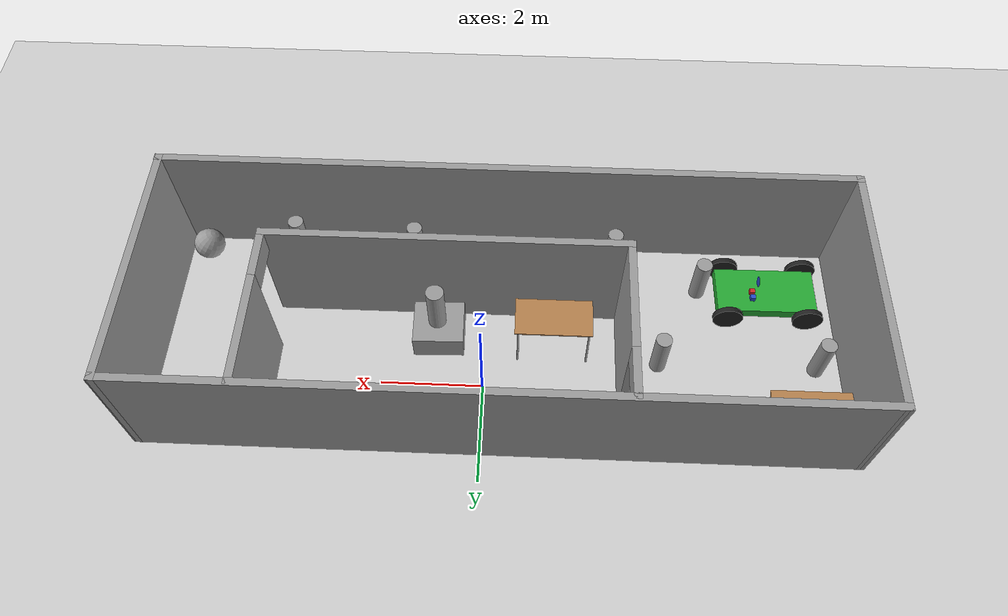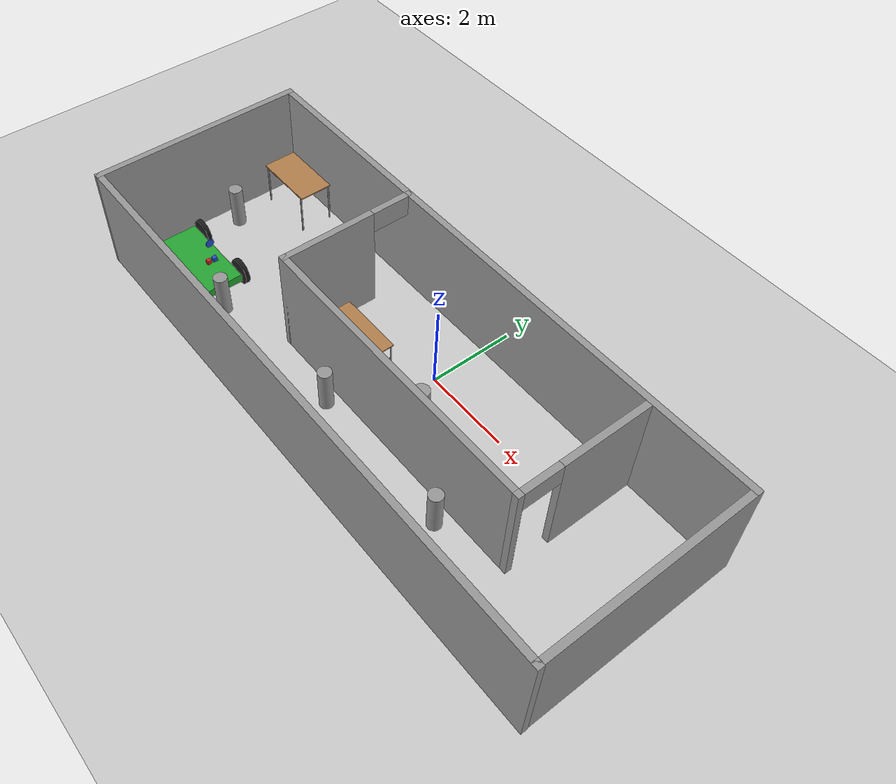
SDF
<sdf version="1.7">
 <world name="default">
  <plugin name="gazebo_ros_state" filename="libgazebo_ros_state.so">
   <ros><namespace>/gazebo</namespace></ros>
  </plugin>
  <physics type="ode">
   <max_step_size>0.001</max_step_size>
   <real_time_factor>1</real_time_factor>
   <real_time_update_rate>1000</real_time_update_rate>
   <ode>
    <solver>
     <type>quick</type>
     <iters>150</iters>
     <sor>1.3</sor>
     <use_dynamic_moi_rescaling>0</use_dynamic_moi_rescaling>
    </solver>
    <constraints>
     <cfm>1e-06</cfm>
     <erp>0.8</erp>
     <contact_max_correcting_vel>0.1</contact_max_correcting_vel>
     <contact_surface_layer>0.005</contact_surface_layer>
    </constraints>
   </ode>
   <gravity>0 0 0</gravity>
  </physics>
  <scene>
   <sky><clouds><speed>12</speed></clouds></sky>
   <ambient>0.4 0.4 0.4 1</ambient>
   <background>0.7 0.7 0.7 1</background>
   <shadows>1</shadows>
  </scene>
  <light name="sun" type="directional">
   <pose>0 0 10 0 -0 0</pose>
   <diffuse>0.8 0.8 0.8 1</diffuse>
   <specular>0.2 0.2 0.2 1</specular>
   <attenuation>
    <range>1000</range>
    <constant>0.9</constant>
    <linear>0.01</linear>
    <quadratic>0.001</quadratic>
   </attenuation>
   <direction>-0.5 0.1 -0.9</direction>
   <spot><inner_angle>0</inner_angle><outer_angle>0</outer_angle><falloff>0</falloff></spot>
  </light>
  <model name="ground_plane">
   <static>1</static>
   <link name="link">
    <collision name="collision">
     <geometry><plane><normal>0 0 1</normal><size>100 100</size></plane></geometry>
     <surface>
      <contact><collide_bitmask>65535</collide_bitmask></contact>
      <friction><ode><mu>100</mu><mu2>50</mu2></ode></friction>
     </surface>
    </collision>
    <visual name="visual">
     <cast_shadows>0</cast_shadows>
     <geometry><plane><normal>0 0 1</normal><size>100 100</size></plane></geometry>
     <material>
      <script><uri>file://media/materials/scripts/gazebo.material</uri><name>Gazebo/Grey</name></script>
     </material>
    </visual>
   </link>
  </model>
  <gravity>0 0 -9.81</gravity>
  <magnetic_field>6e-06 2.3e-05 -4.2e-05</magnetic_field>
  <atmosphere type="adiabatic"/>
  <audio><device>default</device></audio>
  <spherical_coordinates>
   <surface_model>EARTH_WGS84</surface_model>
   <latitude_deg>0</latitude_deg>
   <longitude_deg>0</longitude_deg>
   <elevation>0</elevation>
   <heading_deg>0</heading_deg>
  </spherical_coordinates>
  <model name="world1.world">
   <pose>-0.325077 -1.045 0 0 -0 0</pose>
   <link name="Wall_12">
    <collision name="Wall_12_Collision">
     <geometry><box><size>13.75 0.15 2.5</size></box></geometry>
     <pose>0 0 1.25 0 -0 0</pose>
    </collision>
    <visual name="Wall_12_Visual">
     <pose>0 0 1.25 0 -0 0</pose>
     <geometry><box><size>13.75 0.15 2.5</size></box></geometry>
     <material>
      <script><uri>file://media/materials/scripts/gazebo.material</uri><name>Gazebo/Grey</name></script>
      <ambient>1 1 1 1</ambient>
     </material>
     <meta><layer>0</layer></meta>
    </visual>
    <pose>-0.004923 2.425 0 0 -0 0</pose>
   </link>
   <link name="Wall_13">
    <collision name="Wall_13_Collision">
     <geometry><box><size>5 0.15 2.5</size></box></geometry>
     <pose>0 0 1.25 0 -0 0</pose>
    </collision>
    <visual name="Wall_13_Visual">
     <pose>0 0 1.25 0 -0 0</pose>
     <geometry><box><size>5 0.15 2.5</size></box></geometry>
     <material>
      <script><uri>file://media/materials/scripts/gazebo.material</uri><name>Gazebo/Grey</name></script>
      <ambient>1 1 1 1</ambient>
     </material>
     <meta><layer>0</layer></meta>
    </visual>
    <pose>6.79508 -0 0 0 -0 -1.5708</pose>
   </link>
   <link name="Wall_14">
    <collision name="Wall_14_Collision">
     <geometry><box><size>0.16 0.15 2.5</size></box></geometry>
     <pose>0 0 1.25 0 -0 0</pose>
    </collision>
    <visual name="Wall_14_Visual">
     <pose>0 0 1.25 0 -0 0</pose>
     <geometry><box><size>0.16 0.15 2.5</size></box></geometry>
     <material>
      <script><uri>file://media/materials/scripts/gazebo.material</uri><name>Gazebo/Grey</name></script>
      <ambient>1 1 1 1</ambient>
     </material>
     <meta><layer>0</layer></meta>
    </visual>
    <pose>6.80008 -2.425 0 0 -0 0</pose>
   </link>
   <link name="Wall_15">
    <collision name="Wall_15_Collision">
     <geometry><box><size>13.75 0.15 2.5</size></box></geometry>
     <pose>0 0 1.25 0 -0 0</pose>
    </collision>
    <visual name="Wall_15_Visual">
     <pose>0 0 1.25 0 -0 0</pose>
     <geometry><box><size>13.75 0.15 2.5</size></box></geometry>
     <material>
      <script><uri>file://media/materials/scripts/gazebo.material</uri><name>Gazebo/Grey</name></script>
      <ambient>1 1 1 1</ambient>
     </material>
     <meta><layer>0</layer></meta>
    </visual>
    <pose>0.005077 -2.425 0 0 -0 3.14159</pose>
   </link>
   <link name="Wall_16">
    <collision name="Wall_16_Collision">
     <geometry><box><size>5.00001 0.15 2.5</size></box></geometry>
     <pose>0 0 1.25 0 -0 0</pose>
    </collision>
    <visual name="Wall_16_Visual">
     <pose>0 0 1.25 0 -0 0</pose>
     <geometry><box><size>5.00001 0.15 2.5</size></box></geometry>
     <material>
      <script><uri>file://media/materials/scripts/gazebo.material</uri><name>Gazebo/Grey</name></script>
      <ambient>1 1 1 1</ambient>
     </material>
     <meta><layer>0</layer></meta>
    </visual>
    <pose>-6.79992 -0 0 0 -0 1.57286</pose>
   </link>
   <link name="Wall_18">
    <pose>-2.36492 0.845 0 0 -0 -1.5708</pose>
    <visual name="Wall_18_Visual_0">
     <pose>-1.5725 0 1.25 0 -0 0</pose>
     <geometry><box><size>0.105 0.15 2.5</size></box></geometry>
     <material>
      <script><uri>file://media/materials/scripts/gazebo.material</uri><name>Gazebo/Grey</name></script>
      <ambient>1 1 1 1</ambient>
     </material>
     <meta><layer>0</layer></meta>
    </visual>
    <collision name="Wall_18_Collision_0">
     <geometry><box><size>0.105 0.15 2.5</size></box></geometry>
     <pose>-1.5725 0 1.25 0 -0 0</pose>
    </collision>
    <visual name="Wall_18_Visual_1">
     <pose>0.5025 0 1.25 0 -0 0</pose>
     <geometry><box><size>2.245 0.15 2.5</size></box></geometry>
     <material>
      <script><uri>file://media/materials/scripts/gazebo.material</uri><name>Gazebo/Grey</name></script>
      <ambient>1 1 1 1</ambient>
     </material>
     <meta><layer>0</layer></meta>
    </visual>
    <collision name="Wall_18_Collision_1">
     <geometry><box><size>2.245 0.15 2.5</size></box></geometry>
     <pose>0.5025 0 1.25 0 -0 0</pose>
    </collision>
    <visual name="Wall_18_Visual_2">
     <pose>-1.07 0 2.25 0 -0 0</pose>
     <geometry><box><size>0.9 0.15 0.5</size></box></geometry>
     <material>
      <script><uri>file://media/materials/scripts/gazebo.material</uri><name>Gazebo/Grey</name></script>
      <ambient>1 1 1 1</ambient>
     </material>
     <meta><layer>0</layer></meta>
    </visual>
    <collision name="Wall_18_Collision_2">
     <geometry><box><size>0.9 0.15 0.5</size></box></geometry>
     <pose>-1.07 0 2.25 0 -0 0</pose>
    </collision>
   </link>
   <link name="Wall_19">
    <collision name="Wall_19_Collision">
     <geometry><box><size>7 0.15 2.5</size></box></geometry>
     <pose>0 0 1.25 0 -0 0</pose>
    </collision>
    <visual name="Wall_19_Visual">
     <pose>0 0 1.25 0 -0 0</pose>
     <geometry><box><size>7 0.15 2.5</size></box></geometry>
     <material>
      <script><uri>file://media/materials/scripts/gazebo.material</uri><name>Gazebo/Grey</name></script>
      <ambient>1 1 1 1</ambient>
     </material>
     <meta><layer>0</layer></meta>
    </visual>
    <pose>1.06008 -0.705 0 0 -0 0</pose>
   </link>
   <link name="Wall_20">
    <pose>4.48508 0.845 0 0 -0 1.5708</pose>
    <visual name="Wall_20_Visual_0">
     <pose>-1.5525 0 1.25 0 -0 0</pose>
     <geometry><box><size>0.145 0.15 2.5</size></box></geometry>
     <material>
      <script><uri>file://media/materials/scripts/gazebo.material</uri><name>Gazebo/Grey</name></script>
      <ambient>1 1 1 1</ambient>
     </material>
     <meta><layer>0</layer></meta>
    </visual>
    <collision name="Wall_20_Collision_0">
     <geometry><box><size>0.145 0.15 2.5</size></box></geometry>
     <pose>-1.5525 0 1.25 0 -0 0</pose>
    </collision>
    <visual name="Wall_20_Visual_1">
     <pose>0.5225 0 1.25 0 -0 0</pose>
     <geometry><box><size>2.205 0.15 2.5</size></box></geometry>
     <material>
      <script><uri>file://media/materials/scripts/gazebo.material</uri><name>Gazebo/Grey</name></script>
      <ambient>1 1 1 1</ambient>
     </material>
     <meta><layer>0</layer></meta>
    </visual>
    <collision name="Wall_20_Collision_1">
     <geometry><box><size>2.205 0.15 2.5</size></box></geometry>
     <pose>0.5225 0 1.25 0 -0 0</pose>
    </collision>
    <visual name="Wall_20_Visual_2">
     <pose>-1.03 0 2.25 0 -0 0</pose>
     <geometry><box><size>0.9 0.15 0.5</size></box></geometry>
     <material>
      <script><uri>file://media/materials/scripts/gazebo.material</uri><name>Gazebo/Grey</name></script>
      <ambient>1 1 1 1</ambient>
     </material>
     <meta><layer>0</layer></meta>
    </visual>
    <collision name="Wall_20_Collision_2">
     <geometry><box><size>0.9 0.15 0.5</size></box></geometry>
     <pose>-1.03 0 2.25 0 -0 0</pose>
    </collision>
   </link>
   <static>1</static>
  </model>
  <model name="table">
   <static>1</static>
   <link name="link">
    <collision name="surface">
     <pose>0 0 1 0 -0 0</pose>
     <geometry><box><size>1.5 0.8 0.03</size></box></geometry>
     <surface><friction><ode><mu>0.6</mu><mu2>0.6</mu2></ode></friction></surface>
    </collision>
    <visual name="visual1">
     <pose>0 0 1 0 -0 0</pose>
     <geometry><box><size>1.5 0.8 0.03</size></box></geometry>
     <material>
      <script><uri>file://media/materials/scripts/gazebo.material</uri><name>Gazebo/Wood</name></script>
     </material>
    </visual>
    <collision name="front_left_leg">
     <pose>0.68 0.38 0.5 0 -0 0</pose>
     <geometry><cylinder><radius>0.02</radius><length>1</length></cylinder></geometry>
    </collision>
    <visual name="front_left_leg">
     <pose>0.68 0.38 0.5 0 -0 0</pose>
     <geometry><cylinder><radius>0.02</radius><length>1</length></cylinder></geometry>
     <material>
      <script><uri>file://media/materials/scripts/gazebo.material</uri><name>Gazebo/Grey</name></script>
     </material>
    </visual>
    <collision name="front_right_leg">
     <pose>0.68 -0.38 0.5 0 -0 0</pose>
     <geometry><cylinder><radius>0.02</radius><length>1</length></cylinder></geometry>
    </collision>
    <visual name="front_right_leg">
     <pose>0.68 -0.38 0.5 0 -0 0</pose>
     <geometry><cylinder><radius>0.02</radius><length>1</length></cylinder></geometry>
     <material>
      <script><uri>file://media/materials/scripts/gazebo.material</uri><name>Gazebo/Grey</name></script>
     </material>
    </visual>
    <collision name="back_right_leg">
     <pose>-0.68 -0.38 0.5 0 -0 0</pose>
     <geometry><cylinder><radius>0.02</radius><length>1</length></cylinder></geometry>
    </collision>
    <visual name="back_right_leg">
     <pose>-0.68 -0.38 0.5 0 -0 0</pose>
     <geometry><cylinder><radius>0.02</radius><length>1</length></cylinder></geometry>
     <material>
      <script><uri>file://media/materials/scripts/gazebo.material</uri><name>Gazebo/Grey</name></script>
     </material>
    </visual>
    <collision name="back_left_leg">
     <pose>-0.68 0.38 0.5 0 -0 0</pose>
     <geometry><cylinder><radius>0.02</radius><length>1</length></cylinder></geometry>
    </collision>
    <visual name="back_left_leg">
     <pose>-0.68 0.38 0.5 0 -0 0</pose>
     <geometry><cylinder><radius>0.02</radius><length>1</length></cylinder></geometry>
     <material>
      <script><uri>file://media/materials/scripts/gazebo.material</uri><name>Gazebo/Grey</name></script>
     </material>
    </visual>
   </link>
   <pose>-1.34051 -1.02622 0 0 -0 0</pose>
  </model>
  <model name="table_0">
   <static>1</static>
   <link name="link">
    <collision name="surface">
     <pose>0 0 1 0 -0 0</pose>
     <geometry><box><size>1.5 0.8 0.03</size></box></geometry>
     <surface><friction><ode><mu>0.6</mu><mu2>0.6</mu2></ode></friction></surface>
    </collision>
    <visual name="visual1">
     <pose>0 0 1 0 -0 0</pose>
     <geometry><box><size>1.5 0.8 0.03</size></box></geometry>
     <material>
      <script><uri>file://media/materials/scripts/gazebo.material</uri><name>Gazebo/Wood</name></script>
     </material>
    </visual>
    <collision name="front_left_leg">
     <pose>0.68 0.38 0.5 0 -0 0</pose>
     <geometry><cylinder><radius>0.02</radius><length>1</length></cylinder></geometry>
    </collision>
    <visual name="front_left_leg">
     <pose>0.68 0.38 0.5 0 -0 0</pose>
     <geometry><cylinder><radius>0.02</radius><length>1</length></cylinder></geometry>
     <material>
      <script><uri>file://media/materials/scripts/gazebo.material</uri><name>Gazebo/Grey</name></script>
     </material>
    </visual>
    <collision name="front_right_leg">
     <pose>0.68 -0.38 0.5 0 -0 0</pose>
     <geometry><cylinder><radius>0.02</radius><length>1</length></cylinder></geometry>
    </collision>
    <visual name="front_right_leg">
     <pose>0.68 -0.38 0.5 0 -0 0</pose>
     <geometry><cylinder><radius>0.02</radius><length>1</length></cylinder></geometry>
     <material>
      <script><uri>file://media/materials/scripts/gazebo.material</uri><name>Gazebo/Grey</name></script>
     </material>
    </visual>
    <collision name="back_right_leg">
     <pose>-0.68 -0.38 0.5 0 -0 0</pose>
     <geometry><cylinder><radius>0.02</radius><length>1</length></cylinder></geometry>
    </collision>
    <visual name="back_right_leg">
     <pose>-0.68 -0.38 0.5 0 -0 0</pose>
     <geometry><cylinder><radius>0.02</radius><length>1</length></cylinder></geometry>
     <material>
      <script><uri>file://media/materials/scripts/gazebo.material</uri><name>Gazebo/Grey</name></script>
     </material>
    </visual>
    <collision name="back_left_leg">
     <pose>-0.68 0.38 0.5 0 -0 0</pose>
     <geometry><cylinder><radius>0.02</radius><length>1</length></cylinder></geometry>
    </collision>
    <visual name="back_left_leg">
     <pose>-0.68 0.38 0.5 0 -0 0</pose>
     <geometry><cylinder><radius>0.02</radius><length>1</length></cylinder></geometry>
     <material>
      <script><uri>file://media/materials/scripts/gazebo.material</uri><name>Gazebo/Grey</name></script>
     </material>
    </visual>
   </link>
   <pose>-6.08584 0.782727 0 0 -0 0</pose>
  </model>
  <model name="car">
   <link name="chassis">
    <pose>0 0 0.3 0 -0 0</pose>
    <collision name="collision"><geometry><box><size>2 1 0.2</size></box></geometry></collision>
    <visual name="visual">
     <geometry><box><size>2 1 0.2</size></box></geometry>
     <material>
      <script><uri>file://media/materials/scripts/gazebo.material</uri><name>Gazebo/Green</name></script>
     </material>
    </visual>
    <inertial>
     <inertia><ixx>1</ixx><ixy>0</ixy><ixz>0</ixz><iyy>1</iyy><iyz>0</iyz><izz>1</izz></inertia>
     <mass>1</mass>
    </inertial>
   </link>
   <link name="front_left_wheel">
    <pose>0.8 0.6 0.3 -0 1.5707 1.5707</pose>
    <collision name="collision">
     <geometry><cylinder><radius>0.3</radius><length>0.1</length></cylinder></geometry>
    </collision>
    <visual name="visual">
     <geometry><cylinder><radius>0.3</radius><length>0.1</length></cylinder></geometry>
     <material>
      <script><uri>file://media/materials/scripts/gazebo.material</uri><name>Gazebo/Black</name></script>
     </material>
    </visual>
    <inertial>
     <inertia><ixx>1</ixx><ixy>0</ixy><ixz>0</ixz><iyy>1</iyy><iyz>0</iyz><izz>1</izz></inertia>
     <mass>1</mass>
    </inertial>
   </link>
   <link name="front_right_wheel">
    <pose>0.8 -0.6 0.3 -0 1.5707 1.5707</pose>
    <collision name="collision">
     <geometry><cylinder><radius>0.3</radius><length>0.1</length></cylinder></geometry>
    </collision>
    <visual name="visual">
     <geometry><cylinder><radius>0.3</radius><length>0.1</length></cylinder></geometry>
     <material>
      <script><uri>file://media/materials/scripts/gazebo.material</uri><name>Gazebo/Black</name></script>
     </material>
    </visual>
    <inertial>
     <inertia><ixx>1</ixx><ixy>0</ixy><ixz>0</ixz><iyy>1</iyy><iyz>0</iyz><izz>1</izz></inertia>
     <mass>1</mass>
    </inertial>
   </link>
   <link name="back_right_wheel">
    <pose>-0.8 -0.6 0.3 -0 1.5707 1.5707</pose>
    <collision name="collision">
     <geometry><cylinder><radius>0.3</radius><length>0.1</length></cylinder></geometry>
    </collision>
    <visual name="visual">
     <geometry><cylinder><radius>0.3</radius><length>0.1</length></cylinder></geometry>
     <material>
      <script><uri>file://media/materials/scripts/gazebo.material</uri><name>Gazebo/Black</name></script>
     </material>
    </visual>
    <inertial>
     <inertia><ixx>1</ixx><ixy>0</ixy><ixz>0</ixz><iyy>1</iyy><iyz>0</iyz><izz>1</izz></inertia>
     <mass>1</mass>
    </inertial>
   </link>
   <link name="back_left_wheel">
    <pose>-0.8 0.6 0.3 -0 1.5707 1.5707</pose>
    <collision name="collision">
     <geometry><cylinder><radius>0.3</radius><length>0.1</length></cylinder></geometry>
    </collision>
    <visual name="visual">
     <geometry><cylinder><radius>0.3</radius><length>0.1</length></cylinder></geometry>
     <material>
      <script><uri>file://media/materials/scripts/gazebo.material</uri><name>Gazebo/Black</name></script>
     </material>
    </visual>
    <inertial>
     <inertia><ixx>1</ixx><ixy>0</ixy><ixz>0</ixz><iyy>1</iyy><iyz>0</iyz><izz>1</izz></inertia>
     <mass>1</mass>
    </inertial>
   </link>
   <link name="gas_pedal">
    <pose>0.3 0.1 0.5 0 -0 0</pose>
    <collision name="collision"><geometry><box><size>0.1 0.1 0.1</size></box></geometry></collision>
    <visual name="visual">
     <geometry><box><size>0.1 0.1 0.1</size></box></geometry>
     <material>
      <script><uri>file://media/materials/scripts/gazebo.material</uri><name>Gazebo/Red</name></script>
     </material>
    </visual>
    <inertial>
     <inertia><ixx>1</ixx><ixy>0</ixy><ixz>0</ixz><iyy>1</iyy><iyz>0</iyz><izz>1</izz></inertia>
     <mass>1</mass>
    </inertial>
   </link>
   <link name="brake_pedal">
    <pose>0.3 0.25 0.5 0 -0 0</pose>
    <collision name="collision"><geometry><box><size>0.1 0.1 0.1</size></box></geometry></collision>
    <visual name="visual">
     <geometry><box><size>0.1 0.1 0.1</size></box></geometry>
     <material>
      <script><uri>file://media/materials/scripts/gazebo.material</uri><name>Gazebo/Blue</name></script>
     </material>
    </visual>
    <inertial>
     <inertia><ixx>1</ixx><ixy>0</ixy><ixz>0</ixz><iyy>1</iyy><iyz>0</iyz><izz>1</izz></inertia>
     <mass>1</mass>
    </inertial>
   </link>
   <link name="steering_wheel">
    <pose>0.3 0.2 1 0 1.5707 0</pose>
    <collision name="collision">
     <geometry><cylinder><radius>0.1</radius><length>0.01</length></cylinder></geometry>
    </collision>
    <visual name="visual">
     <geometry><cylinder><radius>0.1</radius><length>0.01</length></cylinder></geometry>
     <material>
      <script><uri>file://media/materials/scripts/gazebo.material</uri><name>Gazebo/Blue</name></script>
     </material>
    </visual>
    <inertial>
     <inertia><ixx>1</ixx><ixy>0</ixy><ixz>0</ixz><iyy>1</iyy><iyz>0</iyz><izz>1</izz></inertia>
     <mass>1</mass>
    </inertial>
   </link>
   <joint name="gas_joint" type="prismatic">
    <parent>chassis</parent>
    <child>gas_pedal</child>
    <axis>
     <xyz expressed_in="__model__">1 0 0</xyz>
     <limit><lower>0</lower><upper>0.2</upper></limit>
     <dynamics><spring_reference>0</spring_reference><spring_stiffness>0</spring_stiffness></dynamics>
    </axis>
   </joint>
   <joint name="brake_joint" type="prismatic">
    <parent>chassis</parent>
    <child>brake_pedal</child>
    <axis>
     <xyz expressed_in="__model__">1 0 0</xyz>
     <limit><lower>0</lower><upper>0.2</upper></limit>
     <dynamics><spring_reference>0</spring_reference><spring_stiffness>0</spring_stiffness></dynamics>
    </axis>
   </joint>
   <joint name="steering_joint" type="revolute">
    <parent>chassis</parent>
    <child>steering_wheel</child>
    <axis>
     <xyz expressed_in="__model__">1 0 0</xyz>
     <limit><lower>-7.853</lower><upper>7.853</upper></limit>
     <dynamics><spring_reference>0</spring_reference><spring_stiffness>0</spring_stiffness></dynamics>
    </axis>
   </joint>
   <joint name="front_left_joint" type="revolute2">
    <parent>chassis</parent>
    <child>front_left_wheel</child>
    <axis>
     <xyz expressed_in="__model__">0 0 1</xyz>
     <limit><lower>1.24559e-07</lower><upper>1.24559e-07</upper></limit>
     <dynamics><spring_reference>0</spring_reference><spring_stiffness>0</spring_stiffness></dynamics>
    </axis>
    <axis2>
     <xyz expressed_in="__model__">0 1 0</xyz>
     <limit><upper>1e+16</upper><lower>-1e+16</lower></limit>
     <dynamics><spring_reference>0</spring_reference><spring_stiffness>0</spring_stiffness></dynamics>
    </axis2>
    <physics><ode><limit><cfm>0</cfm><erp>0.9</erp></limit></ode></physics>
   </joint>
   <joint name="front_right_joint" type="revolute2">
    <parent>chassis</parent>
    <child>front_right_wheel</child>
    <axis>
     <xyz expressed_in="__model__">0 0 1</xyz>
     <limit><lower>1.24559e-07</lower><upper>1.24559e-07</upper></limit>
     <dynamics><spring_reference>0</spring_reference><spring_stiffness>0</spring_stiffness></dynamics>
    </axis>
    <axis2>
     <xyz expressed_in="__model__">0 1 0</xyz>
     <limit><upper>1e+16</upper><lower>-1e+16</lower></limit>
     <dynamics><spring_reference>0</spring_reference><spring_stiffness>0</spring_stiffness></dynamics>
    </axis2>
    <physics><ode><limit><cfm>0</cfm><erp>0.9</erp></limit></ode></physics>
   </joint>
   <joint name="back_right_joint" type="revolute2">
    <parent>chassis</parent>
    <child>back_right_wheel</child>
    <axis>
     <xyz expressed_in="__model__">0 0 1</xyz>
     <limit><lower>0</lower><upper>0</upper></limit>
     <dynamics><spring_reference>0</spring_reference><spring_stiffness>0</spring_stiffness></dynamics>
    </axis>
    <axis2>
     <xyz expressed_in="__model__">0 1 0</xyz>
     <limit><upper>1e+16</upper><lower>-1e+16</lower></limit>
     <dynamics><spring_reference>0</spring_reference><spring_stiffness>0</spring_stiffness></dynamics>
    </axis2>
    <physics><ode><limit><cfm>0</cfm><erp>0.9</erp></limit></ode></physics>
   </joint>
   <joint name="back_left_joint" type="revolute2">
    <parent>chassis</parent>
    <child>back_left_wheel</child>
    <axis>
     <xyz expressed_in="__model__">0 0 1</xyz>
     <limit><lower>0</lower><upper>0</upper></limit>
     <dynamics><spring_reference>0</spring_reference><spring_stiffness>0</spring_stiffness></dynamics>
    </axis>
    <axis2>
     <xyz expressed_in="__model__">0 1 0</xyz>
     <limit><upper>1e+16</upper><lower>-1e+16</lower></limit>
     <dynamics><spring_reference>0</spring_reference><spring_stiffness>0</spring_stiffness></dynamics>
    </axis2>
    <physics><ode><limit><cfm>0</cfm><erp>0.9</erp></limit></ode></physics>
   </joint>
   <plugin name="vehicle" filename="libVehiclePlugin.so">
    <front_left>front_left_joint</front_left>
    <front_right>front_right_joint</front_right>
    <back_left>back_left_joint</back_left>
    <back_right>back_right_joint</back_right>
    <gas>gas_joint</gas>
    <brake>brake_joint</brake>
    <steering>steering_joint</steering>
    <front_power>10</front_power>
    <rear_power>10</rear_power>
    <tire_angle_range>0.5</tire_angle_range>
    <max_speed>10</max_speed>
    <aero_load>0.1</aero_load>
   </plugin>
   <pose>-5.6712 -2.22943 1.5e-05 -4e-06 2e-06 0.006415</pose>
  </model>
  <model name="unit_box">
   <pose>0.92926 -1.14538 0.249654 -1.56909 0.001785 0.025146</pose>
   <link name="link">
    <inertial>
     <mass>1</mass>
     <inertia>
      <ixx>0.166667</ixx>
      <ixy>0</ixy>
      <ixz>0</ixz>
      <iyy>0.166667</iyy>
      <iyz>0</iyz>
      <izz>0.166667</izz>
     </inertia>
    </inertial>
    <collision name="collision"><geometry><box><size>1 0.536145 0.922971</size></box></geometry></collision>
    <visual name="visual">
     <geometry><box><size>1 0.536145 0.922971</size></box></geometry>
     <material>
      <script><name>Gazebo/Grey</name><uri>file://media/materials/scripts/gazebo.material</uri></script>
     </material>
    </visual>
   </link>
  </model>
  <model name="unit_cylinder">
   <pose>0.953621 -1.16726 1.01765 0.001799 0.001931 0.012074</pose>
   <link name="link">
    <inertial>
     <mass>1</mass>
     <inertia><ixx>0.145833</ixx><ixy>0</ixy><ixz>0</ixz><iyy>0.145833</iyy><iyz>0</iyz><izz>0.125</izz></inertia>
    </inertial>
    <collision name="collision">
     <geometry><cylinder><radius>0.176553</radius><length>1</length></cylinder></geometry>
    </collision>
    <visual name="visual">
     <geometry><cylinder><radius>0.176553</radius><length>1</length></cylinder></geometry>
     <material>
      <script><name>Gazebo/Grey</name><uri>file://media/materials/scripts/gazebo.material</uri></script>
     </material>
    </visual>
   </link>
  </model>
  <model name="unit_cylinder_0">
   <pose>4.02247 -3.14507 0.499993 0 -0 -0.000214</pose>
   <link name="link">
    <inertial>
     <mass>1</mass>
     <inertia><ixx>0.145833</ixx><ixy>0</ixy><ixz>0</ixz><iyy>0.145833</iyy><iyz>0</iyz><izz>0.125</izz></inertia>
    </inertial>
    <collision name="collision">
     <geometry><cylinder><radius>0.156489</radius><length>1</length></cylinder></geometry>
    </collision>
    <visual name="visual">
     <geometry><cylinder><radius>0.156489</radius><length>1</length></cylinder></geometry>
     <material>
      <script><name>Gazebo/Grey</name><uri>file://media/materials/scripts/gazebo.material</uri></script>
     </material>
    </visual>
   </link>
  </model>
  <model name="unit_cylinder_0_clone">
   <pose>2.65479 -2.17917 0.499999 1e-06 -1e-06 -0.000124</pose>
   <link name="link">
    <inertial>
     <mass>1</mass>
     <inertia><ixx>0.145833</ixx><ixy>0</ixy><ixz>0</ixz><iyy>0.145833</iyy><iyz>0</iyz><izz>0.125</izz></inertia>
    </inertial>
    <collision name="collision">
     <geometry><cylinder><radius>0.156489</radius><length>1</length></cylinder></geometry>
    </collision>
    <visual name="visual">
     <geometry><cylinder><radius>0.156489</radius><length>1</length></cylinder></geometry>
     <material>
      <script><name>Gazebo/Grey</name><uri>file://media/materials/scripts/gazebo.material</uri></script>
     </material>
    </visual>
   </link>
  </model>
  <model name="unit_cylinder_0_clone_clone">
   <pose>1.5579 -3.08066 0.499999 0 -0 -0.000124</pose>
   <link name="link">
    <inertial>
     <mass>1</mass>
     <inertia><ixx>0.145833</ixx><ixy>0</ixy><ixz>0</ixz><iyy>0.145833</iyy><iyz>0</iyz><izz>0.125</izz></inertia>
    </inertial>
    <collision name="collision">
     <geometry><cylinder><radius>0.156489</radius><length>1</length></cylinder></geometry>
    </collision>
    <visual name="visual">
     <geometry><cylinder><radius>0.156489</radius><length>1</length></cylinder></geometry>
     <material>
      <script><name>Gazebo/Grey</name><uri>file://media/materials/scripts/gazebo.material</uri></script>
     </material>
    </visual>
   </link>
  </model>
  <model name="unit_cylinder_0_clone_clone_0">
   <pose>-0.870478 -2.13106 0.499999 1e-06 -1e-06 -0.000124</pose>
   <link name="link">
    <inertial>
     <mass>1</mass>
     <inertia><ixx>0.145833</ixx><ixy>0</ixy><ixz>0</ixz><iyy>0.145833</iyy><iyz>0</iyz><izz>0.125</izz></inertia>
    </inertial>
    <collision name="collision">
     <geometry><cylinder><radius>0.156489</radius><length>1</length></cylinder></geometry>
    </collision>
    <visual name="visual">
     <geometry><cylinder><radius>0.156489</radius><length>1</length></cylinder></geometry>
     <material>
      <script><name>Gazebo/Grey</name><uri>file://media/materials/scripts/gazebo.material</uri></script>
     </material>
    </visual>
   </link>
  </model>
  <model name="unit_cylinder_0_clone_clone_1">
   <pose>-2.58628 -3.07057 0.499999 -0 -0 -0.000124</pose>
   <link name="link">
    <inertial>
     <mass>1</mass>
     <inertia><ixx>0.145833</ixx><ixy>0</ixy><ixz>0</ixz><iyy>0.145833</iyy><iyz>0</iyz><izz>0.125</izz></inertia>
    </inertial>
    <collision name="collision">
     <geometry><cylinder><radius>0.156489</radius><length>1</length></cylinder></geometry>
    </collision>
    <visual name="visual">
     <geometry><cylinder><radius>0.156489</radius><length>1</length></cylinder></geometry>
     <material>
      <script><name>Gazebo/Grey</name><uri>file://media/materials/scripts/gazebo.material</uri></script>
     </material>
    </visual>
   </link>
  </model>
  <model name="unit_cylinder_0_clone_clone_2">
   <pose>-4.34387 -2.39856 0.499999 1e-06 -1e-06 -0.000124</pose>
   <link name="link">
    <inertial>
     <mass>1</mass>
     <inertia><ixx>0.145833</ixx><ixy>0</ixy><ixz>0</ixz><iyy>0.145833</iyy><iyz>0</iyz><izz>0.125</izz></inertia>
    </inertial>
    <collision name="collision">
     <geometry><cylinder><radius>0.156489</radius><length>1</length></cylinder></geometry>
    </collision>
    <visual name="visual">
     <geometry><cylinder><radius>0.156489</radius><length>1</length></cylinder></geometry>
     <material>
      <script><name>Gazebo/Grey</name><uri>file://media/materials/scripts/gazebo.material</uri></script>
     </material>
    </visual>
   </link>
  </model>
  <model name="unit_cylinder_0_clone_clone_3">
   <pose>-6.56896 -0.625653 0.499991 -1e-06 1e-06 -0.000124</pose>
   <link name="link">
    <inertial>
     <mass>1</mass>
     <inertia><ixx>0.145833</ixx><ixy>0</ixy><ixz>0</ixz><iyy>0.145833</iyy><iyz>0</iyz><izz>0.125</izz></inertia>
    </inertial>
    <collision name="collision">
     <geometry><cylinder><radius>0.156489</radius><length>1</length></cylinder></geometry>
    </collision>
    <visual name="visual">
     <geometry><cylinder><radius>0.156489</radius><length>1</length></cylinder></geometry>
     <material>
      <script><name>Gazebo/Grey</name><uri>file://media/materials/scripts/gazebo.material</uri></script>
     </material>
    </visual>
   </link>
  </model>
  <model name="unit_cylinder_0_clone_clone_4">
   <pose>-3.44687 -0.61696 0.499999 0 -0 -0.000124</pose>
   <link name="link">
    <inertial>
     <mass>1</mass>
     <inertia><ixx>0.145833</ixx><ixy>0</ixy><ixz>0</ixz><iyy>0.145833</iyy><iyz>0</iyz><izz>0.125</izz></inertia>
    </inertial>
    <collision name="collision">
     <geometry><cylinder><radius>0.156489</radius><length>1</length></cylinder></geometry>
    </collision>
    <visual name="visual">
     <geometry><cylinder><radius>0.156489</radius><length>1</length></cylinder></geometry>
     <material>
      <script><name>Gazebo/Grey</name><uri>file://media/materials/scripts/gazebo.material</uri></script>
     </material>
    </visual>
   </link>
  </model>
  <model name="unit_sphere">
   <pose>5.96174 -3.01695 0.314241 -0.624493 -0.090109 1.83206</pose>
   <link name="link">
    <inertial>
     <mass>1</mass>
     <inertia><ixx>0.1</ixx><ixy>0</ixy><ixz>0</ixz><iyy>0.1</iyy><iyz>0</iyz><izz>0.1</izz></inertia>
    </inertial>
    <collision name="collision"><geometry><sphere><radius>0.314241</radius></sphere></geometry></collision>
    <visual name="visual">
     <geometry><sphere><radius>0.314241</radius></sphere></geometry>
     <material>
      <script><name>Gazebo/Grey</name><uri>file://media/materials/scripts/gazebo.material</uri></script>
     </material>
    </visual>
   </link>
  </model>
  <model name="unit_sphere_clone">
   <pose>0.019667 -3.05296 0.314241 -0.624493 -0.090109 1.83206</pose>
   <link name="link">
    <inertial>
     <mass>1</mass>
     <inertia><ixx>0.1</ixx><ixy>0</ixy><ixz>0</ixz><iyy>0.1</iyy><iyz>0</iyz><izz>0.1</izz></inertia>
    </inertial>
    <collision name="collision"><geometry><sphere><radius>0.314241</radius></sphere></geometry></collision>
    <visual name="visual">
     <geometry><sphere><radius>0.314241</radius></sphere></geometry>
     <material>
      <script><name>Gazebo/Grey</name><uri>file://media/materials/scripts/gazebo.material</uri></script>
     </material>
    </visual>
   </link>
  </model>
 </world>
</sdf>
